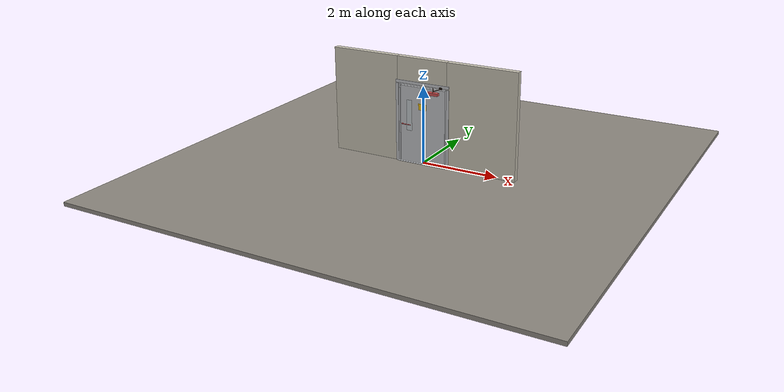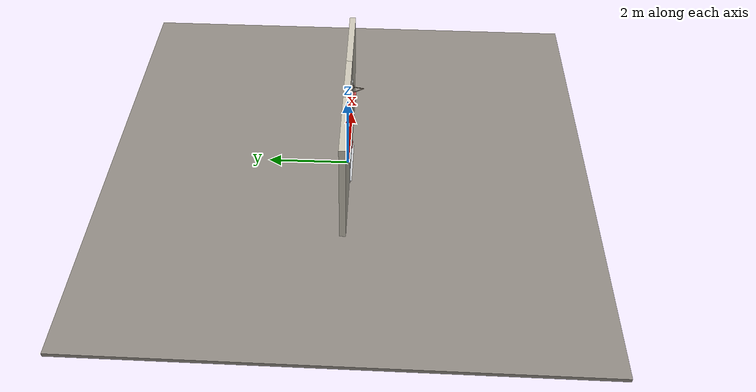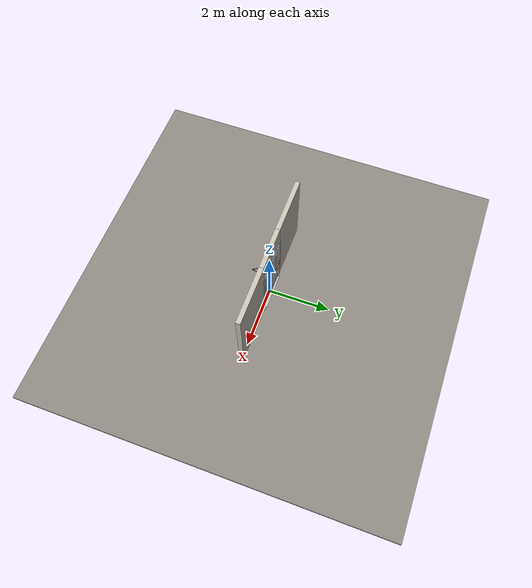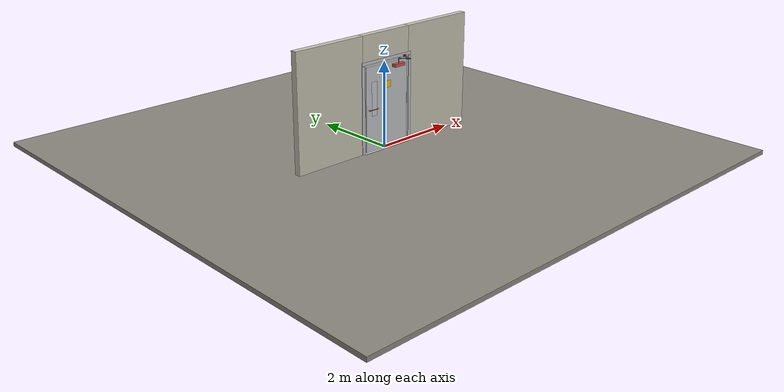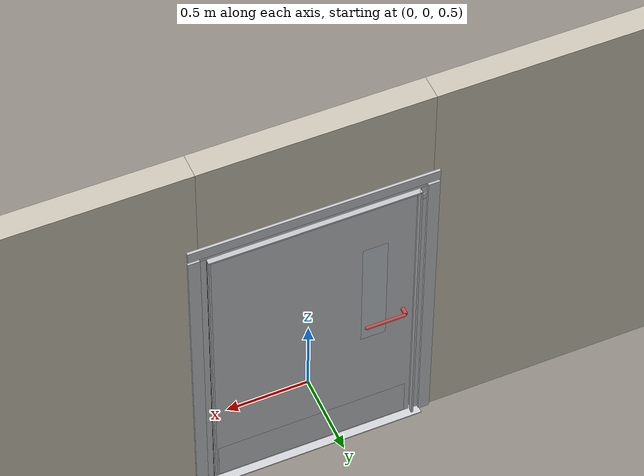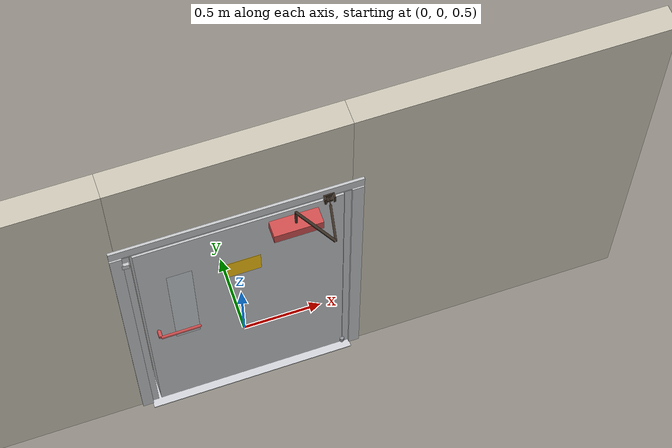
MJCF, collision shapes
<?xml version="1.0" ?>
<mujoco model="db0937_cold_storage_full">
  <compiler angle="radian" meshdir="../../hardware" texturedir="../../textures" autolimits="true" inertiafromgeom="false"/>
  <option timestep="0.002" integrator="implicitfast" cone="elliptic" impratio="10" noslip_iterations="3">
    <flag multiccd="enable"/>
  </option>
  <size memory="16M"/>
  <default>
    <geom condim="4" solref="0.005 1" solimp="0.95 0.99 0.001"/>
    <joint solreflimit="0.005 1" solimplimit="0.95 0.99 0.001"/>
    <tendon solreflimit="0.005 1"/>
    <equality solref="0.002 1"/>
  </default>
  <visual>
    <headlight ambient="0.4 0.4 0.4" diffuse="0.7 0.7 0.7" specular="0.2 0.2 0.2"/>
    <quality shadowsize="4096"/>
    <map znear="0.01" zfar="60"/>
  </visual>
  <asset>
    <mesh name="closer_body_fdc4667657" file="closer_body_fdc4667657.obj"/>
    <mesh name="hinge_05d9a38dfa" file="hinge_05d9a38dfa.obj"/>
    <mesh name="hinge_jamb_953fb56768" file="hinge_jamb_953fb56768.obj"/>
    <mesh name="lever_40740b93f7" file="lever_40740b93f7.obj"/>
    <material name="mat_floor" rgba="0.55 0.53 0.5 1" specular="0.2" shininess="0.15" reflectance="0"/>
    <material name="mat_wall" rgba="0.78 0.76 0.7 1" specular="0.2" shininess="0.1" reflectance="0"/>
    <material name="mat_hinge" rgba="0.55 0.56 0.58 1" specular="0.8" shininess="0.55" reflectance="0.4"/>
    <material name="mat_leaf" rgba="0.75 0.76 0.77 1" specular="0.8" shininess="0.65" reflectance="0.4"/>
    <material name="mat_glass" rgba="0.85 0.92 0.95 0.25" specular="0.2" shininess="0.95" reflectance="0.1"/>
    <material name="mat_op_chrome" rgba="0.9 0.9 0.92 1" specular="0.8" shininess="0.9" reflectance="0.4"/>
    <material name="mat_trim" rgba="0.85 0.66 0.3 1" specular="0.8" shininess="0.75" reflectance="0.4"/>
    <material name="mat_bolt" rgba="0.75 0.76 0.77 1" specular="0.8" shininess="0.65" reflectance="0.4"/>
    <material name="mat_frame" rgba="0.75 0.76 0.77 1" specular="0.8" shininess="0.65" reflectance="0.4"/>
    <material name="mat_seal" rgba="0.1 0.1 0.1 1" specular="0.2" shininess="0.1" reflectance="0"/>
    <material name="mat_threshold" rgba="0.8 0.81 0.83 1" specular="0.8" shininess="0.6" reflectance="0.4"/>
    <material name="mat_closer" rgba="0.22 0.17 0.13 1" specular="0.8" shininess="0.6" reflectance="0.4"/>
    <material name="mat_kick" rgba="0.75 0.76 0.77 1" specular="0.8" shininess="0.65" reflectance="0.4"/>
    <material name="mat_placard" rgba="0.95 0.75 0.05 1" specular="0.2" shininess="0.5" reflectance="0"/>
    <texture name="skybox" type="skybox" builtin="gradient" rgb1="0.6 0.7 0.85" rgb2="0.9 0.92 0.95" width="256" height="256"/>
  </asset>
  <worldbody>
    <light name="sun" pos="1.5 -2.5 4" dir="-0.3 0.5 -0.8" directional="true" diffuse="0.8 0.8 0.8" specular="0.3 0.3 0.3" castshadow="true"/>
    <light name="fill" pos="-1.5 2.5 3" dir="0.3 -0.5 -0.7" directional="true" diffuse="0.35 0.35 0.4" castshadow="false"/>
    <camera name="robot_view" pos="0 -2.5 1.7" xyaxes="1 0 0 0 0.26963 0.962964" fovy="52"/>
    <camera name="far_view" pos="0 2.5 1.7" xyaxes="-1 0 0 0 -0.26963 0.962964" fovy="52"/>
    <camera name="iso" pos="-1.9 -2.1 2.1" xyaxes="0.741536 -0.670913 0 0.242917 0.268487 0.932151" fovy="46"/>
    <camera name="detail_handle" pos="-0.158 -0.93 1.28" xyaxes="0.97561 0.219512 0 -0.070934 0.315262 0.94635" fovy="38"/>
    <geom name="floor" type="box" size="6 6 0.05" pos="0 0 -0.05" material="mat_floor" group="0" contype="1" conaffinity="1" friction="0.8 0.005 0.0001" density="2400"/>
    <geom name="wall_left" type="box" size="0.9025 0.075 1.35" pos="-1.5975 0 1.35" material="mat_wall" group="0" contype="1" conaffinity="1" friction="0.6 0.005 0.0001" density="800"/>
    <geom name="wall_right" type="box" size="0.9175 0.075 1.35" pos="1.5825 0 1.35" material="mat_wall" group="0" contype="1" conaffinity="1" friction="0.6 0.005 0.0001" density="800"/>
    <geom name="wall_header" type="box" size="0.68 0.075 0.3125" pos="-0.015 0 2.3875" material="mat_wall" group="0" contype="1" conaffinity="1" friction="0.6 0.005 0.0001" density="800"/>
    <geom name="hinge_0_jamb" type="mesh" mesh="hinge_jamb_953fb56768" pos="0.617 -0.082 0.262" quat="0 0 1 0" material="mat_hinge" group="1" contype="0" conaffinity="0" density="7850"/>
    <geom name="hinge_1_jamb" type="mesh" mesh="hinge_jamb_953fb56768" pos="0.617 -0.082 1.7964" quat="0 0 1 0" material="mat_hinge" group="1" contype="0" conaffinity="0" density="7850"/>
    <geom name="jamb_hinge" type="box" size="0.0225 0.075 1" pos="0.6425 0 1" material="mat_frame" group="0" contype="1" conaffinity="1" friction="0.6 0.005 0.0001" density="300"/>
    <geom name="strike_1926_wall_n" type="box" size="0.0375 0.03375 0.019" pos="-0.6575 0.04125 1.9264" material="mat_frame" group="0" contype="1" conaffinity="1" friction="0.6 0.005 0.0001" density="300"/>
    <geom name="strike_1926_wall_p" type="box" size="0.0375 0.008 0.019" pos="-0.6575 -0.0155 1.9264" material="mat_frame" group="0" contype="1" conaffinity="1" friction="0.6 0.005 0.0001" density="300"/>
    <geom name="strike_1926_ramp" type="box" size="0.0375 0.035921 0.019" pos="-0.660822 -0.055596 1.9264" quat="0.99881 0 0 -0.048776" material="mat_frame" group="0" contype="1" conaffinity="1" friction="0.12 0.005 0.0001" density="300"/>
    <geom name="strike_1926_ramp_n" type="box" size="0.0375 0.035921 0.019" pos="-0.660822 0.043596 1.9264" quat="0.99881 0 0 0.048776" material="mat_frame" group="0" contype="1" conaffinity="1" friction="0.12 0.005 0.0001" density="300"/>
    <geom name="strike_1926_back" type="box" size="0.0325 0.0075 0.019" pos="-0.6625 0 1.9264" material="mat_frame" group="0" contype="1" conaffinity="1" friction="0.6 0.005 0.0001" density="300"/>
    <geom name="jamb_strike_0" type="box" size="0.0375 0.075 0.9537" pos="-0.6575 0 0.9537" material="mat_frame" group="0" contype="1" conaffinity="1" friction="0.6 0.005 0.0001" density="300"/>
    <geom name="jamb_strike_1" type="box" size="0.0375 0.075 0.0273" pos="-0.6575 0 1.9727" material="mat_frame" group="0" contype="1" conaffinity="1" friction="0.6 0.005 0.0001" density="300"/>
    <geom name="jamb_head" type="box" size="0.68 0.075 0.0225" pos="-0.015 0 2.0225" material="mat_frame" group="0" contype="1" conaffinity="1" friction="0.6 0.005 0.0001" density="300"/>
    <geom name="head_stud" type="box" size="0.68 0.075 0.015" pos="-0.015 0 2.06" material="mat_wall" group="0" contype="1" conaffinity="1" friction="0.6 0.005 0.0001" density="500"/>
    <geom name="stop_hinge" type="box" size="0.0055 0.016 1" pos="0.6145 0.0915 1" material="mat_frame" group="0" contype="1" conaffinity="1" friction="0.6 0.005 0.0001" density="300"/>
    <geom name="stop_strike" type="box" size="0.0055 0.016 1" pos="-0.6145 0.0915 1" material="mat_frame" group="0" contype="1" conaffinity="1" friction="0.6 0.005 0.0001" density="300"/>
    <geom name="stop_head" type="box" size="0.62 0.016 0.0055" pos="0 0.0915 1.9945" material="mat_frame" group="0" contype="1" conaffinity="1" friction="0.6 0.005 0.0001" density="300"/>
    <geom name="seal_hinge" type="box" size="0.004 0.006 1" pos="0.617 0.081 1" material="mat_seal" group="1" contype="0" conaffinity="0" density="1100"/>
    <geom name="seal_strike" type="box" size="0.004 0.006 1" pos="-0.617 0.081 1" material="mat_seal" group="1" contype="0" conaffinity="0" density="1100"/>
    <geom name="seal_head" type="box" size="0.6 0.006 0.008" pos="0 0.081 1.988" material="mat_seal" group="1" contype="0" conaffinity="0" density="1100"/>
    <geom name="casing_l_n" type="box" size="0.035 0.008 1.0225" pos="-0.695 -0.083 1" material="mat_frame" group="2" contype="0" conaffinity="0" density="300"/>
    <geom name="casing_r_n" type="box" size="0.035 0.008 1.0225" pos="0.695 -0.083 1" material="mat_frame" group="2" contype="0" conaffinity="0" density="300"/>
    <geom name="casing_h_n" type="box" size="0.73 0.008 0.035" pos="0 -0.083 2.075" material="mat_frame" group="2" contype="0" conaffinity="0" density="300"/>
    <geom name="casing_l_p" type="box" size="0.035 0.008 1.0225" pos="-0.695 0.083 1" material="mat_frame" group="2" contype="0" conaffinity="0" density="300"/>
    <geom name="casing_r_p" type="box" size="0.035 0.008 1.0225" pos="0.695 0.083 1" material="mat_frame" group="2" contype="0" conaffinity="0" density="300"/>
    <geom name="casing_h_p" type="box" size="0.73 0.008 0.035" pos="0 0.083 2.075" material="mat_frame" group="2" contype="0" conaffinity="0" density="300"/>
    <geom name="threshold" type="box" size="0.665 0.125 0.004" pos="0 0 0.004" material="mat_threshold" group="0" contype="1" conaffinity="1" friction="0.6 0.005 0.0001" density="2700"/>
    <geom name="closer_bracket" type="box" size="0.032 0.004 0.025667" pos="0.52 -0.095 2.037667" material="mat_closer" group="1" contype="0" conaffinity="0" density="2700"/>
    <geom name="closer_shoe_guide_-1" type="box" size="0.006 0.016 0.025667" pos="0.494 -0.107 2.037667" material="mat_closer" group="1" contype="0" conaffinity="0" density="2700"/>
    <geom name="closer_shoe_guide_+1" type="box" size="0.006 0.016 0.025667" pos="0.546 -0.107 2.037667" material="mat_closer" group="1" contype="0" conaffinity="0" density="2700"/>
    <site name="approach_point" pos="0 -1.5 0" quat="1 0 0 0" size="0.05" rgba="0.2 0.9 0.2 0.5" group="4"/>
    <site name="goal_point" pos="0 1.5 0" quat="1 0 0 0" size="0.05" rgba="0.2 0.9 0.2 0.5" group="4"/>
    <site name="door_plane_center" pos="0 0 1" quat="1 0 0 0" size="0.02" rgba="0.2 0.9 0.2 0.5" group="4"/>
    <body name="leaf_riser" pos="0.62 0 0">
      <inertial pos="-0.003 -0.082 0.055" mass="0.174012" quat="0 0.707107 0 0.707107" diaginertia="0.000017053 0.00002732 0.00002732"/>
      <joint name="leaf_rise" type="slide" axis="0 0 1" limited="true" range="0 0.0264" damping="1" armature="0.5"/>
      <geom name="leaf_riser_marker" type="cylinder" size="0.014 0.018" pos="-0.003 -0.082 0.055" material="mat_hinge" group="1" contype="0" conaffinity="0" density="7850"/>
      <body name="leaf" pos="0 0 0">
        <inertial pos="-0.543121 -0.020962 1.118897" mass="74.111207" quat="0.442134 0.484685 0.53657 -0.530745" diaginertia="8.735355103 31.551641955 39.821766617"/>
        <joint name="leaf_hinge" type="hinge" axis="0 0 1" pos="-0.003 -0.082 0" limited="true" range="0 1.745329" solreflimit="0.02 1" damping="12.792177" frictionloss="4.677607" stiffness="21.358593" springref="-1.732324" armature="0.02"/>
        <geom name="leaf_slab" type="box" size="0.61 0.075 0.9822" pos="-0.613 0 0.9942" material="mat_leaf" group="0" contype="1" conaffinity="1" friction="0.35 0.005 0.0001" density="1"/>
        <geom name="leaf_glass_0" type="box" size="0.075 0.0758 0.39288" pos="-0.9838 0 1.229928" material="mat_glass" group="1" contype="0" conaffinity="0" density="1"/>
        <geom name="hinge_0" type="mesh" mesh="hinge_05d9a38dfa" pos="-0.003 -0.082 0.262" quat="0 0 1 0" material="mat_hinge" group="1" contype="0" conaffinity="0" density="7850"/>
        <geom name="hinge_1" type="mesh" mesh="hinge_05d9a38dfa" pos="-0.003 -0.082 1.7964" quat="0 0 1 0" material="mat_hinge" group="1" contype="0" conaffinity="0" density="7850"/>
        <geom name="leaf_mag_catch_faceplate" type="box" size="0.0006 0.012 0.029" pos="-1.2224 0 1.9264" material="mat_bolt" group="1" contype="0" conaffinity="0" density="8500"/>
        <geom name="closer_body" type="mesh" mesh="closer_body_fdc4667657" pos="-0.3 -0.075 1.8844" quat="0 0 -0.707107 0.707107" material="mat_closer" group="1" contype="0" conaffinity="0" density="2000"/>
        <geom name="closer_body_col" type="box" size="0.145 0.05 0.035" pos="-0.3 -0.125 1.8844" material="mat_closer" group="3" contype="1" conaffinity="1" rgba="0.8 0.3 0.3 0.25" friction="0.6 0.005 0.0001" density="2000"/>
        <geom name="closer_pinion_shaft" type="cylinder" size="0.008 0.0728" pos="-0.3 -0.126 1.9572" material="mat_closer" group="1" contype="0" conaffinity="0" density="2700"/>
        <geom name="kick_plate_p" type="box" size="0.58 0.0008 0.125" pos="-0.613 0.0758 0.147" material="mat_kick" group="2" contype="0" conaffinity="0" density="7900"/>
        <geom name="warning_placard" type="box" size="0.11 0.001 0.08" pos="-0.613 -0.076 1.4853" material="mat_placard" group="2" contype="0" conaffinity="0" density="1000"/>
        <site name="leaf_edge_mid" pos="-1.223 0 0.9822" quat="1 0 0 0" size="0.02" rgba="0.2 0.9 0.2 0.5" group="4"/>
        <body name="leaf_handle" pos="-1.158 0 1">
          <inertial pos="0.045692 0 0" mass="3.018013" quat="0 0.707107 0.707107 0" diaginertia="0.018502196 0.037998454 0.05452992"/>
          <joint name="leaf_handle_hinge" type="hinge" axis="0 1 0" limited="true" range="0 0.5" damping="0.58994" frictionloss="0.07" stiffness="2.5" springref="-0.96" armature="0.01"/>
          <geom name="leaf_handle_spindle" type="cylinder" size="0.006 0.075" pos="0 0 0" quat="0.707107 -0.707107 0 0" material="mat_op_chrome" group="1" contype="0" conaffinity="0" density="7850"/>
          <geom name="leaf_handle_lever_n" type="mesh" mesh="lever_40740b93f7" pos="0 -0.075 0" quat="0 0 -0.707107 0.707107" material="mat_op_chrome" group="1" contype="0" conaffinity="0" density="3000"/>
          <geom name="leaf_handle_lever_col_n" type="capsule" size="0.0095 0.1155" pos="0.125 -0.13 0" quat="0.707107 0 0.707107 0" material="mat_op_chrome" group="3" contype="1" conaffinity="1" rgba="0.8 0.3 0.3 0.25" friction="0.7 0.01 0.0001" density="3000"/>
          <geom name="leaf_handle_hub_col_n" type="cylinder" size="0.012 0.022" pos="0 -0.105 0" quat="0.707107 -0.707107 0 0" material="mat_op_chrome" group="3" contype="1" conaffinity="1" rgba="0.8 0.3 0.3 0.25" friction="0.6 0.005 0.0001" density="3000"/>
          <geom name="leaf_handle_lever_p" type="mesh" mesh="lever_40740b93f7" pos="0 0.075 0" quat="0 0 0.707107 0.707107" material="mat_op_chrome" group="1" contype="0" conaffinity="0" density="3000"/>
          <geom name="leaf_handle_lever_col_p" type="capsule" size="0.0095 0.1155" pos="0.125 0.13 0" quat="0.707107 0 0.707107 0" material="mat_op_chrome" group="3" contype="1" conaffinity="1" rgba="0.8 0.3 0.3 0.25" friction="0.7 0.01 0.0001" density="3000"/>
          <geom name="leaf_handle_hub_col_p" type="cylinder" size="0.012 0.022" pos="0 0.105 0" quat="0.707107 -0.707107 0 0" material="mat_op_chrome" group="3" contype="1" conaffinity="1" rgba="0.8 0.3 0.3 0.25" friction="0.6 0.005 0.0001" density="3000"/>
          <site name="leaf_handle_grip_n" pos="0.2 -0.13 0" quat="1 0 0 0" size="0.012" rgba="0.2 0.9 0.2 0.5" group="4"/>
          <site name="leaf_handle_grip_p" pos="0.2 0.13 0" quat="1 0 0 0" size="0.012" rgba="0.2 0.9 0.2 0.5" group="4"/>
        </body>
        <body name="leaf_mag_catch" pos="-1.223 0 1.9264">
          <inertial pos="0.012 0 0" mass="0.030762" quat="0 0 -0.707107 0.707107" diaginertia="0.000000526 0.000002949 0.000002949"/>
          <joint name="leaf_mag_catch_slide" type="slide" axis="1 0 0" limited="true" range="0 0.006" damping="2" frictionloss="0.3" stiffness="20000" springref="-0.006" armature="0.1"/>
          <geom name="leaf_mag_catch_capsule" type="capsule" size="0.006 0.012" pos="0.012 0 0" quat="0.707107 0 -0.707107 0" material="mat_bolt" group="0" contype="1" conaffinity="1" friction="0.2 0.005 0.0001" density="8500"/>
        </body>
        <body name="closer_arm_main" pos="-0.3 -0.126 2.03" quat="0.874163 0 0 -0.485633">
          <inertial pos="0.14 0 0" mass="0.12096" quat="1 0 0 0" diaginertia="0.000003588 0.00079128 0.000792852"/>
          <joint name="closer_pinion" type="hinge" axis="0 0 1" limited="false" damping="0.01" armature="0.002"/>
          <geom name="closer_arm_main_geom" type="box" size="0.14 0.008 0.005" pos="0.14 0 0" material="mat_closer" group="1" contype="0" conaffinity="0" density="2700"/>
          <body name="closer_arm_fore" pos="0.28 0 0" quat="0.37011 0 0 0.928988">
            <inertial pos="0.127353 0 0" mass="0.076107" quat="1 0 0 0" diaginertia="0.000001712 0.000430185 0.000430774"/>
            <joint name="closer_elbow" type="hinge" axis="0 0 1" limited="false" damping="0.01" armature="0.002"/>
            <geom name="closer_arm_fore_geom" type="box" size="0.1125 0.007 0.004" pos="0.1125 0 0" material="mat_closer" group="1" contype="0" conaffinity="0" density="2700"/>
            <geom name="closer_shoe_neck" type="box" size="0.0175 0.003 0.003" pos="0.2425 0 0" material="mat_closer" group="1" contype="0" conaffinity="0" density="2700"/>
            <geom name="closer_shoe_pivot" type="cylinder" size="0.005 0.011" pos="0.26 0 0" material="mat_closer" group="1" contype="0" conaffinity="0" density="2700"/>
          </body>
        </body>
      </body>
    </body>
    <body name="closer_shoe" pos="0.52 -0.109 2.03">
      <inertial pos="0 0 0" mass="0.033696" quat="1 0 0 0" diaginertia="0.000001842 0.00000499 0.000005394"/>
      <joint name="closer_shoe_slide" type="slide" axis="0 0 1" limited="true" range="0 0.015333" damping="0.1" armature="0.05"/>
      <geom name="closer_shoe_block" type="box" size="0.0195 0.01 0.008" pos="0 0 0" material="mat_closer" group="1" contype="0" conaffinity="0" density="2700"/>
    </body>
  </worldbody>
  <equality>
    <joint name="leaf_rise_couple" joint1="leaf_rise" joint2="leaf_hinge" polycoef="0 0.007639 0 0 0" active="true"/>
    <connect name="closer_arm_connect" body1="closer_arm_fore" body2="closer_shoe" anchor="0.26 0 0" active="true"/>
  </equality>
  <contact>
    <exclude body1="closer_arm_main" body2="leaf"/>
    <exclude body1="closer_arm_fore" body2="leaf"/>
    <exclude body1="closer_arm_main" body2="closer_arm_fore"/>
  </contact>
  <sensor>
    <jointpos name="leaf_hinge_pos" joint="leaf_hinge"/>
    <jointvel name="leaf_hinge_vel" joint="leaf_hinge"/>
    <jointpos name="leaf_handle_hinge_pos" joint="leaf_handle_hinge"/>
    <jointvel name="leaf_handle_hinge_vel" joint="leaf_handle_hinge"/>
    <jointpos name="leaf_mag_catch_slide_pos" joint="leaf_mag_catch_slide"/>
    <jointvel name="leaf_mag_catch_slide_vel" joint="leaf_mag_catch_slide"/>
  </sensor>
</mujoco>
